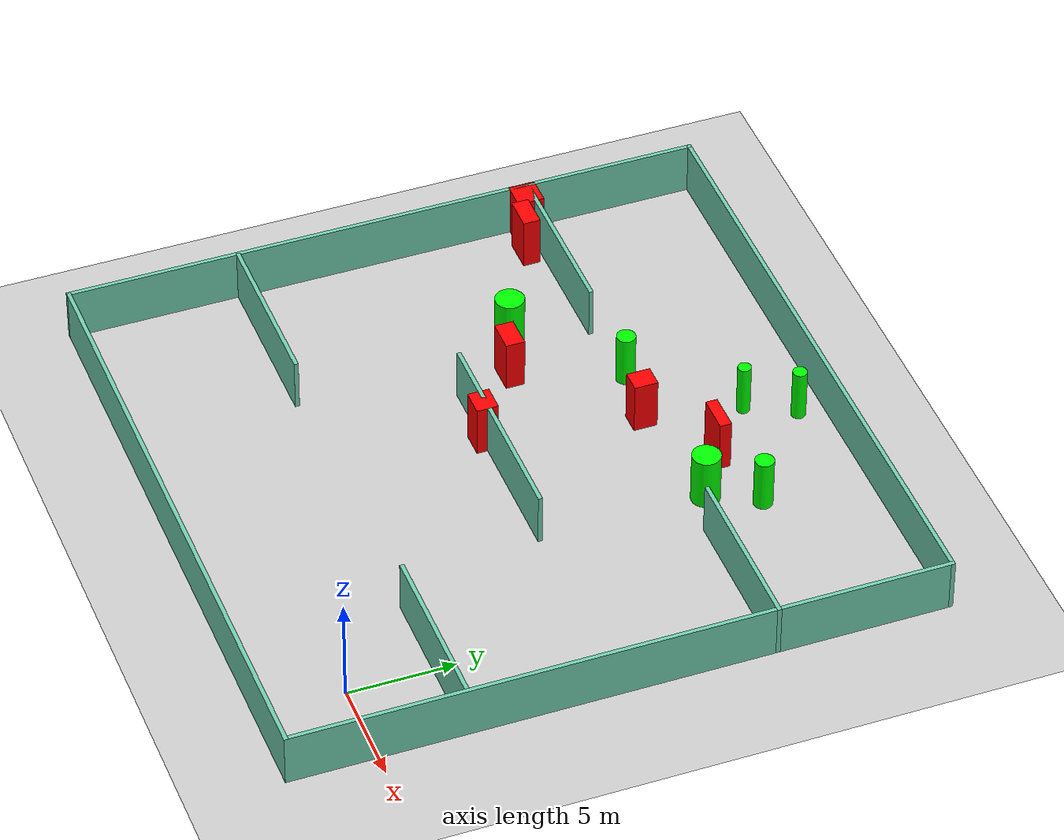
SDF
<sdf version="1.7">
 <world name="default">
  <light name="sun" type="directional">
   <pose>0 0 10 0 -0 0</pose>
   <diffuse>0.8 0.8 0.8 1</diffuse>
   <specular>0.2 0.2 0.2 1</specular>
   <attenuation>
    <range>1000</range>
    <constant>0.9</constant>
    <linear>0.01</linear>
    <quadratic>0.001</quadratic>
   </attenuation>
   <direction>-0.5 0.1 -0.9</direction>
   <spot><inner_angle>0</inner_angle><outer_angle>0</outer_angle><falloff>0</falloff></spot>
  </light>
  <model name="ground_plane">
   <static>1</static>
   <link name="link">
    <collision name="collision">
     <geometry><plane><normal>0 0 1</normal><size>100 100</size></plane></geometry>
     <surface>
      <contact><collide_bitmask>65535</collide_bitmask></contact>
      <friction><ode><mu>100</mu><mu2>50</mu2></ode></friction>
     </surface>
    </collision>
    <visual name="visual">
     <cast_shadows>0</cast_shadows>
     <geometry><plane><normal>0 0 1</normal><size>100 100</size></plane></geometry>
     <material>
      <script><uri>file://media/materials/scripts/gazebo.material</uri><name>Gazebo/Grey</name></script>
     </material>
    </visual>
   </link>
  </model>
  <gravity>0 0 -9.8</gravity>
  <magnetic_field>6e-06 2.3e-05 -4.2e-05</magnetic_field>
  <atmosphere type="adiabatic"/>
  <physics type="ode">
   <max_step_size>0.001</max_step_size>
   <real_time_factor>1</real_time_factor>
   <real_time_update_rate>1000</real_time_update_rate>
  </physics>
  <scene><ambient>0.4 0.4 0.4 1</ambient><background>0.7 0.7 0.7 1</background><shadows>1</shadows></scene>
  <spherical_coordinates>
   <surface_model>EARTH_WGS84</surface_model>
   <latitude_deg>0</latitude_deg>
   <longitude_deg>0</longitude_deg>
   <elevation>0</elevation>
   <heading_deg>0</heading_deg>
  </spherical_coordinates>
  <model name="my_base_walls">
   <link name="Wall_10">
    <collision name="Wall_10_Collision">
     <geometry><box><size>8.2 0.2 2.5</size></box></geometry>
     <pose>0 0 1.25 0 -0 0</pose>
    </collision>
    <visual name="Wall_10_Visual">
     <pose>0 0 1.25 0 -0 0</pose>
     <geometry><box><size>8.2 0.2 2.5</size></box></geometry>
     <material>
      <script><uri>file://media/materials/scripts/gazebo.material</uri><name>Gazebo/Grey</name></script>
      <ambient>0.435294 0.796078 0.67451 1</ambient>
     </material>
     <meta><layer>0</layer></meta>
    </visual>
    <pose>-11 -7 0 0 -0 0</pose>
   </link>
   <link name="Wall_12">
    <collision name="Wall_12_Collision">
     <geometry><box><size>8.2 0.2 2.5</size></box></geometry>
     <pose>0 0 1.25 0 -0 0</pose>
    </collision>
    <visual name="Wall_12_Visual">
     <pose>0 0 1.25 0 -0 0</pose>
     <geometry><box><size>8.2 0.2 2.5</size></box></geometry>
     <material>
      <script><uri>file://media/materials/scripts/gazebo.material</uri><name>Gazebo/Grey</name></script>
      <ambient>0.435294 0.796078 0.67451 1</ambient>
     </material>
     <meta><layer>0</layer></meta>
    </visual>
    <pose>-11 7 0 0 -0 0</pose>
   </link>
   <link name="Wall_14">
    <collision name="Wall_14_Collision">
     <geometry><box><size>8.2 0.2 2.5</size></box></geometry>
     <pose>0 0 1.25 0 -0 0</pose>
    </collision>
    <visual name="Wall_14_Visual">
     <pose>0 0 1.25 0 -0 0</pose>
     <geometry><box><size>8.2 0.2 2.5</size></box></geometry>
     <material>
      <script><uri>file://media/materials/scripts/gazebo.material</uri><name>Gazebo/Grey</name></script>
      <ambient>0.435294 0.796078 0.67451 1</ambient>
     </material>
     <meta><layer>0</layer></meta>
    </visual>
    <pose>11 7 0 0 -0 3.14159</pose>
   </link>
   <link name="Wall_16">
    <collision name="Wall_16_Collision">
     <geometry><box><size>10.2 0.2 2.5</size></box></geometry>
     <pose>0 0 1.25 0 -0 0</pose>
    </collision>
    <visual name="Wall_16_Visual">
     <pose>0 0 1.25 0 -0 0</pose>
     <geometry><box><size>10.2 0.2 2.5</size></box></geometry>
     <material>
      <script><uri>file://media/materials/scripts/gazebo.material</uri><name>Gazebo/Grey</name></script>
      <ambient>0.435294 0.796078 0.67451 1</ambient>
     </material>
     <meta><layer>0</layer></meta>
    </visual>
    <pose>0 0 0 0 -0 3.14159</pose>
   </link>
   <link name="Wall_2">
    <collision name="Wall_2_Collision">
     <geometry><box><size>30.2 0.2 2.5</size></box></geometry>
     <pose>0 0 1.25 0 -0 0</pose>
    </collision>
    <visual name="Wall_2_Visual">
     <pose>0 0 1.25 0 -0 0</pose>
     <geometry><box><size>30.2 0.2 2.5</size></box></geometry>
     <material>
      <script><uri>file://media/materials/scripts/gazebo.material</uri><name>Gazebo/Grey</name></script>
      <ambient>0.435294 0.796078 0.67451 1</ambient>
     </material>
     <meta><layer>0</layer></meta>
    </visual>
    <pose>0 -15 0 0 -0 3.14159</pose>
   </link>
   <link name="Wall_3">
    <collision name="Wall_3_Collision">
     <geometry><box><size>30.2 0.2 2.5</size></box></geometry>
     <pose>0 0 1.25 0 -0 0</pose>
    </collision>
    <visual name="Wall_3_Visual">
     <pose>0 0 1.25 0 -0 0</pose>
     <geometry><box><size>30.2 0.2 2.5</size></box></geometry>
     <material>
      <script><uri>file://media/materials/scripts/gazebo.material</uri><name>Gazebo/Grey</name></script>
      <ambient>0.435294 0.796078 0.67451 1</ambient>
     </material>
     <meta><layer>0</layer></meta>
    </visual>
    <pose>-15 0 0 0 -0 1.5708</pose>
   </link>
   <link name="Wall_4">
    <collision name="Wall_4_Collision">
     <geometry><box><size>30.2 0.2 2.5</size></box></geometry>
     <pose>0 0 1.25 0 -0 0</pose>
    </collision>
    <visual name="Wall_4_Visual">
     <pose>0 0 1.25 0 -0 0</pose>
     <geometry><box><size>30.2 0.2 2.5</size></box></geometry>
     <material>
      <script><uri>file://media/materials/scripts/gazebo.material</uri><name>Gazebo/Grey</name></script>
      <ambient>0.435294 0.796078 0.67451 1</ambient>
     </material>
     <meta><layer>0</layer></meta>
    </visual>
    <pose>0 15 0 0 -0 0</pose>
   </link>
   <link name="Wall_6">
    <collision name="Wall_6_Collision">
     <geometry><box><size>30.2 0.2 2.5</size></box></geometry>
     <pose>0 0 1.25 0 -0 0</pose>
    </collision>
    <visual name="Wall_6_Visual">
     <pose>0 0 1.25 0 -0 0</pose>
     <geometry><box><size>30.2 0.2 2.5</size></box></geometry>
     <material>
      <script><uri>file://media/materials/scripts/gazebo.material</uri><name>Gazebo/Grey</name></script>
      <ambient>0.435294 0.796078 0.67451 1</ambient>
     </material>
     <meta><layer>0</layer></meta>
    </visual>
    <pose>15 0 0 0 -0 1.5708</pose>
   </link>
   <link name="Wall_8">
    <collision name="Wall_8_Collision">
     <geometry><box><size>8.2 0.2 2.5</size></box></geometry>
     <pose>0 0 1.25 0 -0 0</pose>
    </collision>
    <visual name="Wall_8_Visual">
     <pose>0 0 1.25 0 -0 0</pose>
     <geometry><box><size>8.2 0.2 2.5</size></box></geometry>
     <material>
      <script><uri>file://media/materials/scripts/gazebo.material</uri><name>Gazebo/Grey</name></script>
      <ambient>0.435294 0.796078 0.67451 1</ambient>
     </material>
     <meta><layer>0</layer></meta>
    </visual>
    <pose>11 -7 0 0 -0 3.14159</pose>
   </link>
   <static>1</static>
   <pose>-11 11 0 0 -0 0</pose>
  </model>
  <model name="cylinder1">
   <static>1</static>
   <link name="link">
    <inertial>
     <mass>1</mass>
     <inertia><ixx>0.5</ixx><ixy>0</ixy><ixz>0</ixz><iyy>0.5</iyy><iyz>0</iyz><izz>1</izz></inertia>
    </inertial>
    <collision name="collision">
     <geometry><cylinder><radius>0.311322131022342</radius><length>2.5</length></cylinder></geometry>
    </collision>
    <visual name="visual">
     <geometry><cylinder><radius>0.311322131022342</radius><length>2.5</length></cylinder></geometry>
     <material>
      <ambient>0 1 0 1</ambient>
      <diffuse>0 1 0 1</diffuse>
      <specular>0.1 0.1 0.1 1</specular>
      <emissive>0 0 0 0</emissive>
     </material>
    </visual>
   </link>
   <pose>-10.77537942027519 22.51087490086921 1.25 0 0 0</pose>
  </model>
  <model name="cylinder2">
   <static>1</static>
   <link name="link">
    <inertial>
     <mass>1</mass>
     <inertia><ixx>0.5</ixx><ixy>0</ixy><ixz>0</ixz><iyy>0.5</iyy><iyz>0</iyz><izz>1</izz></inertia>
    </inertial>
    <collision name="collision">
     <geometry><cylinder><radius>0.33409389144905477</radius><length>2.5</length></cylinder></geometry>
    </collision>
    <visual name="visual">
     <geometry><cylinder><radius>0.33409389144905477</radius><length>2.5</length></cylinder></geometry>
     <material>
      <ambient>0 1 0 1</ambient>
      <diffuse>0 1 0 1</diffuse>
      <specular>0.1 0.1 0.1 1</specular>
      <emissive>0 0 0 0</emissive>
     </material>
    </visual>
   </link>
   <pose>-9.627125225126948 24.693465661420333 1.25 0 0 0</pose>
  </model>
  <model name="cylinder3">
   <static>1</static>
   <link name="link">
    <inertial>
     <mass>1</mass>
     <inertia><ixx>0.5</ixx><ixy>0</ixy><ixz>0</ixz><iyy>0.5</iyy><iyz>0</iyz><izz>1</izz></inertia>
    </inertial>
    <collision name="collision">
     <geometry><cylinder><radius>0.44526055614134863</radius><length>2.5</length></cylinder></geometry>
    </collision>
    <visual name="visual">
     <geometry><cylinder><radius>0.44526055614134863</radius><length>2.5</length></cylinder></geometry>
     <material>
      <ambient>0 1 0 1</ambient>
      <diffuse>0 1 0 1</diffuse>
      <specular>0.1 0.1 0.1 1</specular>
      <emissive>0 0 0 0</emissive>
     </material>
    </visual>
   </link>
   <pose>-14.553186092436373 18.371014396966824 1.25 0 0 0</pose>
  </model>
  <model name="cylinder4">
   <static>1</static>
   <link name="link">
    <inertial>
     <mass>1</mass>
     <inertia><ixx>0.5</ixx><ixy>0</ixy><ixz>0</ixz><iyy>0.5</iyy><iyz>0</iyz><izz>1</izz></inertia>
    </inertial>
    <collision name="collision">
     <geometry><cylinder><radius>0.44168873051091007</radius><length>2.5</length></cylinder></geometry>
    </collision>
    <visual name="visual">
     <geometry><cylinder><radius>0.44168873051091007</radius><length>2.5</length></cylinder></geometry>
     <material>
      <ambient>0 1 0 1</ambient>
      <diffuse>0 1 0 1</diffuse>
      <specular>0.1 0.1 0.1 1</specular>
      <emissive>0 0 0 0</emissive>
     </material>
    </visual>
   </link>
   <pose>-4.801075075236195 20.99790051090126 1.25 0 0 0</pose>
  </model>
  <model name="cylinder5">
   <static>1</static>
   <link name="link">
    <inertial>
     <mass>1</mass>
     <inertia><ixx>0.5</ixx><ixy>0</ixy><ixz>0</ixz><iyy>0.5</iyy><iyz>0</iyz><izz>1</izz></inertia>
    </inertial>
    <collision name="collision">
     <geometry><cylinder><radius>0.6651937728475471</radius><length>2.5</length></cylinder></geometry>
    </collision>
    <visual name="visual">
     <geometry><cylinder><radius>0.6651937728475471</radius><length>2.5</length></cylinder></geometry>
     <material>
      <ambient>0 1 0 1</ambient>
      <diffuse>0 1 0 1</diffuse>
      <specular>0.1 0.1 0.1 1</specular>
      <emissive>0 0 0 0</emissive>
     </material>
    </visual>
   </link>
   <pose>-5.99504866521041 18.76304793311136 1.25 0 0 0</pose>
  </model>
  <model name="cylinder6">
   <static>1</static>
   <link name="link">
    <inertial>
     <mass>1</mass>
     <inertia><ixx>0.5</ixx><ixy>0</ixy><ixz>0</ixz><iyy>0.5</iyy><iyz>0</iyz><izz>1</izz></inertia>
    </inertial>
    <collision name="collision">
     <geometry><cylinder><radius>0.6827974339983238</radius><length>2.5</length></cylinder></geometry>
    </collision>
    <visual name="visual">
     <geometry><cylinder><radius>0.6827974339983238</radius><length>2.5</length></cylinder></geometry>
     <material>
      <ambient>0 1 0 1</ambient>
      <diffuse>0 1 0 1</diffuse>
      <specular>0.1 0.1 0.1 1</specular>
      <emissive>0 0 0 0</emissive>
     </material>
    </visual>
   </link>
   <pose>-18.755425185832756 14.413424969283902 1.25 0 0 0</pose>
  </model>
  <model name="box1">
   <static>1</static>
   <link name="link">
    <inertial>
     <mass>1</mass>
     <inertia><ixx>0.083</ixx><ixy>0</ixy><ixz>0</ixz><iyy>0.083</iyy><iyz>0</iyz><izz>0.083</izz></inertia>
    </inertial>
    <collision name="collision">
     <geometry><box><size>1.493475527331758 0.8894762974533912 2.5</size></box></geometry>
    </collision>
    <visual name="visual">
     <geometry><box><size>1.493475527331758 0.8894762974533912 2.5</size></box></geometry>
     <material>
      <ambient>1 0 0 1</ambient>
      <diffuse>1 0 0 1</diffuse>
      <specular>0.1 0.1 0.1 1</specular>
      <emissive>0 0 0 0</emissive>
     </material>
    </visual>
    <sensor name="my_contact" type="contact">
     <contact><collision>box_collision</collision><topic>__default_topic__</topic></contact>
    </sensor>
   </link>
   <pose>-16.508406654456774 13.565596499752864 1.25 0 0 0</pose>
  </model>
  <model name="box2">
   <static>1</static>
   <link name="link">
    <inertial>
     <mass>1</mass>
     <inertia><ixx>0.083</ixx><ixy>0</ixy><ixz>0</ixz><iyy>0.083</iyy><iyz>0</iyz><izz>0.083</izz></inertia>
    </inertial>
    <collision name="collision">
     <geometry><box><size>1.2076870852461803 1.0095282998171147 2.5</size></box></geometry>
    </collision>
    <visual name="visual">
     <geometry><box><size>1.2076870852461803 1.0095282998171147 2.5</size></box></geometry>
     <material>
      <ambient>1 0 0 1</ambient>
      <diffuse>1 0 0 1</diffuse>
      <specular>0.1 0.1 0.1 1</specular>
      <emissive>0 0 0 0</emissive>
     </material>
    </visual>
    <sensor name="my_contact" type="contact">
     <contact><collision>box_collision</collision><topic>__default_topic__</topic></contact>
    </sensor>
   </link>
   <pose>-12.760443962822798 10.902639169810824 1.25 0 0 0</pose>
  </model>
  <model name="box3">
   <static>1</static>
   <link name="link">
    <inertial>
     <mass>1</mass>
     <inertia><ixx>0.083</ixx><ixy>0</ixy><ixz>0</ixz><iyy>0.083</iyy><iyz>0</iyz><izz>0.083</izz></inertia>
    </inertial>
    <collision name="collision">
     <geometry><box><size>1.0146051291692122 1.1005221570832435 2.5</size></box></geometry>
    </collision>
    <visual name="visual">
     <geometry><box><size>1.0146051291692122 1.1005221570832435 2.5</size></box></geometry>
     <material>
      <ambient>1 0 0 1</ambient>
      <diffuse>1 0 0 1</diffuse>
      <specular>0.1 0.1 0.1 1</specular>
      <emissive>0 0 0 0</emissive>
     </material>
    </visual>
    <sensor name="my_contact" type="contact">
     <contact><collision>box_collision</collision><topic>__default_topic__</topic></contact>
    </sensor>
   </link>
   <pose>-11.64319252193833 17.990672244320393 1.25 0 0 0</pose>
  </model>
  <model name="box4">
   <static>1</static>
   <link name="link">
    <inertial>
     <mass>1</mass>
     <inertia><ixx>0.083</ixx><ixy>0</ixy><ixz>0</ixz><iyy>0.083</iyy><iyz>0</iyz><izz>0.083</izz></inertia>
    </inertial>
    <collision name="collision">
     <geometry><box><size>1.5739078588851678 0.8060660791868157 2.5</size></box></geometry>
    </collision>
    <visual name="visual">
     <geometry><box><size>1.5739078588851678 0.8060660791868157 2.5</size></box></geometry>
     <material>
      <ambient>1 0 0 1</ambient>
      <diffuse>1 0 0 1</diffuse>
      <specular>0.1 0.1 0.1 1</specular>
      <emissive>0 0 0 0</emissive>
     </material>
    </visual>
    <sensor name="my_contact" type="contact">
     <contact><collision>box_collision</collision><topic>__default_topic__</topic></contact>
    </sensor>
   </link>
   <pose>-24.19975508285864 17.249218690622676 1.25 0 0 0</pose>
  </model>
  <model name="box5">
   <static>1</static>
   <link name="link">
    <inertial>
     <mass>1</mass>
     <inertia><ixx>0.083</ixx><ixy>0</ixy><ixz>0</ixz><iyy>0.083</iyy><iyz>0</iyz><izz>0.083</izz></inertia>
    </inertial>
    <collision name="collision">
     <geometry><box><size>1.272254765218957 1.2426005578479566 2.5</size></box></geometry>
    </collision>
    <visual name="visual">
     <geometry><box><size>1.272254765218957 1.2426005578479566 2.5</size></box></geometry>
     <material>
      <ambient>1 0 0 1</ambient>
      <diffuse>1 0 0 1</diffuse>
      <specular>0.1 0.1 0.1 1</specular>
      <emissive>0 0 0 0</emissive>
     </material>
    </visual>
    <sensor name="my_contact" type="contact">
     <contact><collision>box_collision</collision><topic>__default_topic__</topic></contact>
    </sensor>
   </link>
   <pose>-25.428805985758917 17.73634575818844 1.25 0 0 0</pose>
  </model>
  <model name="box6">
   <static>1</static>
   <link name="link">
    <inertial>
     <mass>1</mass>
     <inertia><ixx>0.083</ixx><ixy>0</ixy><ixz>0</ixz><iyy>0.083</iyy><iyz>0</iyz><izz>0.083</izz></inertia>
    </inertial>
    <collision name="collision">
     <geometry><box><size>1.7060316086434215 0.5483379751914135 2.5</size></box></geometry>
    </collision>
    <visual name="visual">
     <geometry><box><size>1.7060316086434215 0.5483379751914135 2.5</size></box></geometry>
     <material>
      <ambient>1 0 0 1</ambient>
      <diffuse>1 0 0 1</diffuse>
      <specular>0.1 0.1 0.1 1</specular>
      <emissive>0 0 0 0</emissive>
     </material>
    </visual>
    <sensor name="my_contact" type="contact">
     <contact><collision>box_collision</collision><topic>__default_topic__</topic></contact>
    </sensor>
   </link>
   <pose>-8.356511871661375 20.28796055342415 1.25 0 0 0</pose>
  </model>
 </world>
</sdf>
